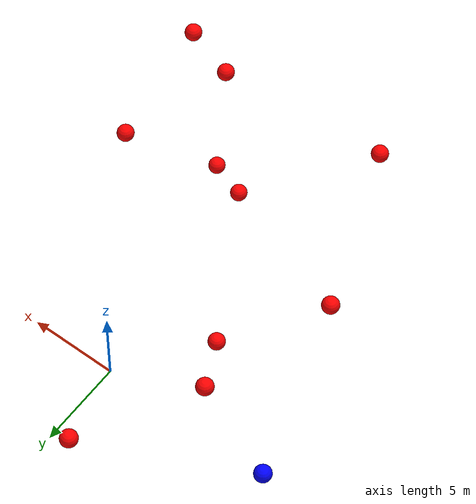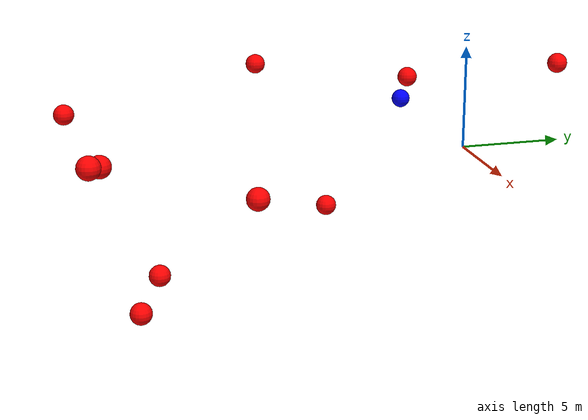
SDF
<?xml version="1.0" ?>
<sdf version="1.8">
    <world name="3d_world">
        <physics name="1ms" type="ode">
            <max_step_size>0.001</max_step_size>
            <real_time_factor>1.0</real_time_factor>
            <real_time_update_rate>1000.0</real_time_update_rate>
        </physics>
        <gravity>0 0 0</gravity>

        <plugin
            filename="gz-sim-physics-system"
            name="gz::sim::v8::systems::Physics">
        </plugin>
        <plugin
            filename="libignition-gazebo-user-commands-system.so"
            name="ignition::gazebo::systems::UserCommands">
        </plugin>
        <plugin
            filename="gz-sim-scene-broadcaster-system"
            name="gz::sim::systems::SceneBroadcaster">
        </plugin>
        <plugin
            filename="gz-sim-sensors-system"
            name="gz::sim::systems::Sensors">
            <render_engine>ogre2</render_engine>
        </plugin>

        <light type="directional" name="sun">
            <cast_shadows>true</cast_shadows>
            <pose>0 0 10 0 0 0</pose>
            <diffuse>0.8 0.8 0.8 1</diffuse>
            <specular>0.2 0.2 0.2 1</specular>
            <attenuation>
                <range>1000</range>
                <constant>0.9</constant>
                <linear>0.01</linear>
                <quadratic>0.001</quadratic>
            </attenuation>
            <direction>-0.5 0.1 -0.9</direction>
        </light>

        <!-- AGENTE -->
        <model name='agente' canonical_link='chassis'>
            <pose relative_to='world'>-10.0 0 0.0 0 0 0</pose>
            <link name='chassis'>
                <pose relative_to='__model__'>0.0 0 0.0 0 0 0</pose>
                <inertial>
                    <mass>1.14395</mass>
                    <inertia>
                        <ixx>0.095329</ixx>
                        <ixy>0</ixy>
                        <ixz>0</ixz>
                        <iyy>0.381317</iyy>
                        <iyz>0</iyz>
                        <izz>0.476646</izz>
                    </inertia>
                </inertial>
                <visual name='visual'>
                    <geometry>
                        <sphere>
                            <radius>0.5</radius>
                        </sphere>
                    </geometry>
                    <material>
                        <ambient>0.0 0.0 1.0 1</ambient>
                        <diffuse>0.0 0.0 1.0 1</diffuse>
                        <specular>0.0 0.0 1.0 1</specular>
                    </material>
                </visual>
                <collision name='collision'>
                    <geometry>
                        <sphere>
                            <radius>0.5</radius>
                        </sphere>
                    </geometry>
                </collision>
                <enable_gravity>false</enable_gravity>
            </link>

            <link name='lidar_link'>
                <pose relative_to='chassis'>0.0 0 0.1 0 0 0</pose>
                <inertial>
                    <mass>0.1</mass>
                    <inertia>
                        <ixx>0.000166667</ixx>
                        <iyy>0.000166667</iyy>
                        <izz>0.000166667</izz>
                    </inertia>
                </inertial>
                <collision name='collision'>
                    <geometry>
                        <cylinder>
                            <radius>0.05</radius>
                            <length>0.1</length>
                        </cylinder>
                    </geometry>
                </collision>
                <visual name='visual'>
                    <geometry>
                        <cylinder>
                            <radius>0.05</radius>
                            <length>0.1</length>
                        </cylinder>
                    </geometry>
                    <material>
                        <ambient>0.0 1.0 0.0 1</ambient>
                        <diffuse>0.0 1.0 0.0 1</diffuse>
                        <specular>0.0 1.0 0.0 1</specular>
                    </material>
                </visual>
                <sensor name="lidar" type="gpu_lidar">
                    <topic>scan</topic>
                    <update_rate>10</update_rate>
                    <lidar>
                        <scan>
                            <horizontal>
                                <samples>5000</samples>
                                <resolution>1</resolution>
                                <min_angle>-3.14159</min_angle>
                                <max_angle>3.14159</max_angle>
                            </horizontal>
                        </scan>
                        <range>
                            <min>0.1</min>
                            <max>10.0</max>
                            <resolution>0.01</resolution>
                        </range>
                    </lidar>
                    <visualize>true</visualize>
                    <always_on>true</always_on>
                    <update_rate>10</update_rate>
                    <pose_frame>lidar</pose_frame>
                </sensor>
                <enable_gravity>false</enable_gravity>
            </link>

            <joint name="lidar_joint" type="fixed">
                <parent>chassis</parent>
                <child>lidar_link</child>
            </joint>

            <plugin
                filename="ignition-gazebo-joint-state-publisher-system"
                name="ignition::gazebo::systems::JointStatePublisher">
            </plugin>
            <plugin
                filename="ignition-gazebo-odometry-publisher-system"
                name="ignition::gazebo::systems::OdometryPublisher">
                <dimensions>3</dimensions>
            </plugin>
            <plugin
                filename="ignition-gazebo-velocity-control-system"
                name="ignition::gazebo::systems::VelocityControl">
                <initial_linear>0.0 0 0</initial_linear>
                <initial_angular>0 0 0.0</initial_angular>
            </plugin>
            <plugin
                filename="libignition-gazebo-pose-publisher-system.so"
                name="ignition::gazebo::systems::PosePublisher">
                <topic>/agente/pose</topic>
                <frame_id>agente</frame_id>
                <update_rate>30</update_rate>
            </plugin>
        </model>

        <!-- OBSTACLE 1 -->
        <model name='obstacle_1' canonical_link='obstacle'>
            <static>false</static>
            <pose relative_to='world'>8.94 -18.85 3.06 0 0 0</pose>
            <link name='obstacle'>
                <pose relative_to='__model__'>0.0 0 0.0 0 0 0</pose>
                <visual name='visual'>
                    <geometry>
                        <sphere>
                            <radius>0.50</radius>
                        </sphere>
                    </geometry>
                    <material>
                        <ambient>1.0 0.0 0.0 1</ambient>
                        <diffuse>1.0 0.0 0.0 1</diffuse>
                        <specular>1.0 0.0 0.0 1</specular>
                    </material>
                </visual>
                <collision name='collision'>
                    <geometry>
                        <sphere>
                            <radius>0.50</radius>
                        </sphere>
                    </geometry>
                </collision>
                <enable_gravity>false</enable_gravity>
            </link>

            <plugin
                filename="ignition-gazebo-velocity-control-system"
                name="ignition::gazebo::systems::VelocityControl">
                <initial_linear>-0.64 1.87 -0.30</initial_linear>
                <initial_angular>0 0 0</initial_angular>
            </plugin>

            <plugin
                filename="ignition-gazebo-odometry-publisher-system"
                name="ignition::gazebo::systems::OdometryPublisher">
                <dimensions>3</dimensions>
            </plugin>
        </model>

        <!-- OBSTACLE 2 -->
        <model name='obstacle_2' canonical_link='obstacle'>
            <static>false</static>
            <pose relative_to='world'>6.15 -18.21 2.22 0 0 0</pose>
            <link name='obstacle'>
                <pose relative_to='__model__'>0.0 0 0.0 0 0 0</pose>
                <visual name='visual'>
                    <geometry>
                        <sphere>
                            <radius>0.50</radius>
                        </sphere>
                    </geometry>
                    <material>
                        <ambient>1.0 0.0 0.0 1</ambient>
                        <diffuse>1.0 0.0 0.0 1</diffuse>
                        <specular>1.0 0.0 0.0 1</specular>
                    </material>
                </visual>
                <collision name='collision'>
                    <geometry>
                        <sphere>
                            <radius>0.50</radius>
                        </sphere>
                    </geometry>
                </collision>
                <enable_gravity>false</enable_gravity>
            </link>

            <plugin
                filename="ignition-gazebo-velocity-control-system"
                name="ignition::gazebo::systems::VelocityControl">
                <initial_linear>-0.38 1.95 -0.24</initial_linear>
                <initial_angular>0 0 0</initial_angular>
            </plugin>

            <plugin
                filename="ignition-gazebo-odometry-publisher-system"
                name="ignition::gazebo::systems::OdometryPublisher">
                <dimensions>3</dimensions>
            </plugin>
        </model>

        <!-- OBSTACLE 3 -->
        <model name='obstacle_3' canonical_link='obstacle'>
            <static>false</static>
            <pose relative_to='world'>-7.81 -8.79 2.96 0 0 0</pose>
            <link name='obstacle'>
                <pose relative_to='__model__'>0.0 0 0.0 0 0 0</pose>
                <visual name='visual'>
                    <geometry>
                        <sphere>
                            <radius>0.50</radius>
                        </sphere>
                    </geometry>
                    <material>
                        <ambient>1.0 0.0 0.0 1</ambient>
                        <diffuse>1.0 0.0 0.0 1</diffuse>
                        <specular>1.0 0.0 0.0 1</specular>
                    </material>
                </visual>
                <collision name='collision'>
                    <geometry>
                        <sphere>
                            <radius>0.50</radius>
                        </sphere>
                    </geometry>
                </collision>
                <enable_gravity>false</enable_gravity>
            </link>

            <plugin
                filename="ignition-gazebo-velocity-control-system"
                name="ignition::gazebo::systems::VelocityControl">
                <initial_linear>1.26 1.47 -0.50</initial_linear>
                <initial_angular>0 0 0</initial_angular>
            </plugin>

            <plugin
                filename="ignition-gazebo-odometry-publisher-system"
                name="ignition::gazebo::systems::OdometryPublisher">
                <dimensions>3</dimensions>
            </plugin>
        </model>

        <!-- OBSTACLE 4 -->
        <model name='obstacle_4' canonical_link='obstacle'>
            <static>false</static>
            <pose relative_to='world'>-2.17 -6.41 -3.21 0 0 0</pose>
            <link name='obstacle'>
                <pose relative_to='__model__'>0.0 0 0.0 0 0 0</pose>
                <visual name='visual'>
                    <geometry>
                        <sphere>
                            <radius>0.50</radius>
                        </sphere>
                    </geometry>
                    <material>
                        <ambient>1.0 0.0 0.0 1</ambient>
                        <diffuse>1.0 0.0 0.0 1</diffuse>
                        <specular>1.0 0.0 0.0 1</specular>
                    </material>
                </visual>
                <collision name='collision'>
                    <geometry>
                        <sphere>
                            <radius>0.50</radius>
                        </sphere>
                    </geometry>
                </collision>
                <enable_gravity>false</enable_gravity>
            </link>

            <plugin
                filename="ignition-gazebo-velocity-control-system"
                name="ignition::gazebo::systems::VelocityControl">
                <initial_linear>0.53 1.61 0.80</initial_linear>
                <initial_angular>0 0 0</initial_angular>
            </plugin>

            <plugin
                filename="ignition-gazebo-odometry-publisher-system"
                name="ignition::gazebo::systems::OdometryPublisher">
                <dimensions>3</dimensions>
            </plugin>
        </model>

        <!-- OBSTACLE 5 -->
        <model name='obstacle_5' canonical_link='obstacle'>
            <static>false</static>
            <pose relative_to='world'>3.17 -15.56 -4.02 0 0 0</pose>
            <link name='obstacle'>
                <pose relative_to='__model__'>0.0 0 0.0 0 0 0</pose>
                <visual name='visual'>
                    <geometry>
                        <sphere>
                            <radius>0.50</radius>
                        </sphere>
                    </geometry>
                    <material>
                        <ambient>1.0 0.0 0.0 1</ambient>
                        <diffuse>1.0 0.0 0.0 1</diffuse>
                        <specular>1.0 0.0 0.0 1</specular>
                    </material>
                </visual>
                <collision name='collision'>
                    <geometry>
                        <sphere>
                            <radius>0.50</radius>
                        </sphere>
                    </geometry>
                </collision>
                <enable_gravity>false</enable_gravity>
            </link>

            <plugin
                filename="ignition-gazebo-velocity-control-system"
                name="ignition::gazebo::systems::VelocityControl">
                <initial_linear>-0.44 1.89 0.49</initial_linear>
                <initial_angular>0 0 0</initial_angular>
            </plugin>

            <plugin
                filename="ignition-gazebo-odometry-publisher-system"
                name="ignition::gazebo::systems::OdometryPublisher">
                <dimensions>3</dimensions>
            </plugin>
        </model>

        <!-- OBSTACLE 6 -->
        <model name='obstacle_6' canonical_link='obstacle'>
            <static>false</static>
            <pose relative_to='world'>-3.88 -19.03 1.88 0 0 0</pose>
            <link name='obstacle'>
                <pose relative_to='__model__'>0.0 0 0.0 0 0 0</pose>
                <visual name='visual'>
                    <geometry>
                        <sphere>
                            <radius>0.50</radius>
                        </sphere>
                    </geometry>
                    <material>
                        <ambient>1.0 0.0 0.0 1</ambient>
                        <diffuse>1.0 0.0 0.0 1</diffuse>
                        <specular>1.0 0.0 0.0 1</specular>
                    </material>
                </visual>
                <collision name='collision'>
                    <geometry>
                        <sphere>
                            <radius>0.50</radius>
                        </sphere>
                    </geometry>
                </collision>
                <enable_gravity>false</enable_gravity>
            </link>

            <plugin
                filename="ignition-gazebo-velocity-control-system"
                name="ignition::gazebo::systems::VelocityControl">
                <initial_linear>0.55 1.91 -0.19</initial_linear>
                <initial_angular>0 0 0</initial_angular>
            </plugin>

            <plugin
                filename="ignition-gazebo-odometry-publisher-system"
                name="ignition::gazebo::systems::OdometryPublisher">
                <dimensions>3</dimensions>
            </plugin>
        </model>

        <!-- OBSTACLE 7 -->
        <model name='obstacle_7' canonical_link='obstacle'>
            <static>false</static>
            <pose relative_to='world'>8.55 -12.09 1.10 0 0 0</pose>
            <link name='obstacle'>
                <pose relative_to='__model__'>0.0 0 0.0 0 0 0</pose>
                <visual name='visual'>
                    <geometry>
                        <sphere>
                            <radius>0.50</radius>
                        </sphere>
                    </geometry>
                    <material>
                        <ambient>1.0 0.0 0.0 1</ambient>
                        <diffuse>1.0 0.0 0.0 1</diffuse>
                        <specular>1.0 0.0 0.0 1</specular>
                    </material>
                </visual>
                <collision name='collision'>
                    <geometry>
                        <sphere>
                            <radius>0.50</radius>
                        </sphere>
                    </geometry>
                </collision>
                <enable_gravity>false</enable_gravity>
            </link>

            <plugin
                filename="ignition-gazebo-velocity-control-system"
                name="ignition::gazebo::systems::VelocityControl">
                <initial_linear>-1.17 1.61 -0.15</initial_linear>
                <initial_angular>0 0 0</initial_angular>
            </plugin>

            <plugin
                filename="ignition-gazebo-odometry-publisher-system"
                name="ignition::gazebo::systems::OdometryPublisher">
                <dimensions>3</dimensions>
            </plugin>
        </model>

        <!-- OBSTACLE 8 -->
        <model name='obstacle_8' canonical_link='obstacle'>
            <static>false</static>
            <pose relative_to='world'>5.64 -16.73 -4.70 0 0 0</pose>
            <link name='obstacle'>
                <pose relative_to='__model__'>0.0 0 0.0 0 0 0</pose>
                <visual name='visual'>
                    <geometry>
                        <sphere>
                            <radius>0.50</radius>
                        </sphere>
                    </geometry>
                    <material>
                        <ambient>1.0 0.0 0.0 1</ambient>
                        <diffuse>1.0 0.0 0.0 1</diffuse>
                        <specular>1.0 0.0 0.0 1</specular>
                    </material>
                </visual>
                <collision name='collision'>
                    <geometry>
                        <sphere>
                            <radius>0.50</radius>
                        </sphere>
                    </geometry>
                </collision>
                <enable_gravity>false</enable_gravity>
            </link>

            <plugin
                filename="ignition-gazebo-velocity-control-system"
                name="ignition::gazebo::systems::VelocityControl">
                <initial_linear>0.07 1.92 0.54</initial_linear>
                <initial_angular>0 0 0</initial_angular>
            </plugin>

            <plugin
                filename="ignition-gazebo-odometry-publisher-system"
                name="ignition::gazebo::systems::OdometryPublisher">
                <dimensions>3</dimensions>
            </plugin>
        </model>

        <!-- OBSTACLE 9 -->
        <model name='obstacle_9' canonical_link='obstacle'>
            <static>false</static>
            <pose relative_to='world'>-5.36 -1.19 2.38 0 0 0</pose>
            <link name='obstacle'>
                <pose relative_to='__model__'>0.0 0 0.0 0 0 0</pose>
                <visual name='visual'>
                    <geometry>
                        <sphere>
                            <radius>0.50</radius>
                        </sphere>
                    </geometry>
                    <material>
                        <ambient>1.0 0.0 0.0 1</ambient>
                        <diffuse>1.0 0.0 0.0 1</diffuse>
                        <specular>1.0 0.0 0.0 1</specular>
                    </material>
                </visual>
                <collision name='collision'>
                    <geometry>
                        <sphere>
                            <radius>0.50</radius>
                        </sphere>
                    </geometry>
                </collision>
                <enable_gravity>false</enable_gravity>
            </link>

            <plugin
                filename="ignition-gazebo-velocity-control-system"
                name="ignition::gazebo::systems::VelocityControl">
                <initial_linear>1.55 0.25 -0.49</initial_linear>
                <initial_angular>0 0 0</initial_angular>
            </plugin>

            <plugin
                filename="ignition-gazebo-odometry-publisher-system"
                name="ignition::gazebo::systems::OdometryPublisher">
                <dimensions>3</dimensions>
            </plugin>
        </model>

        <!-- OBSTACLE 10 -->
        <model name='obstacle_10' canonical_link='obstacle'>
            <static>false</static>
            <pose relative_to='world'>-2.13 5.78 3.43 0 0 0</pose>
            <link name='obstacle'>
                <pose relative_to='__model__'>0.0 0 0.0 0 0 0</pose>
                <visual name='visual'>
                    <geometry>
                        <sphere>
                            <radius>0.50</radius>
                        </sphere>
                    </geometry>
                    <material>
                        <ambient>1.0 0.0 0.0 1</ambient>
                        <diffuse>1.0 0.0 0.0 1</diffuse>
                        <specular>1.0 0.0 0.0 1</specular>
                    </material>
                </visual>
                <collision name='collision'>
                    <geometry>
                        <sphere>
                            <radius>0.50</radius>
                        </sphere>
                    </geometry>
                </collision>
                <enable_gravity>false</enable_gravity>
            </link>

            <plugin
                filename="ignition-gazebo-velocity-control-system"
                name="ignition::gazebo::systems::VelocityControl">
                <initial_linear>-0.32 -1.70 -1.01</initial_linear>
                <initial_angular>0 0 0</initial_angular>
            </plugin>

            <plugin
                filename="ignition-gazebo-odometry-publisher-system"
                name="ignition::gazebo::systems::OdometryPublisher">
                <dimensions>3</dimensions>
            </plugin>
        </model>

    </world>
</sdf>
